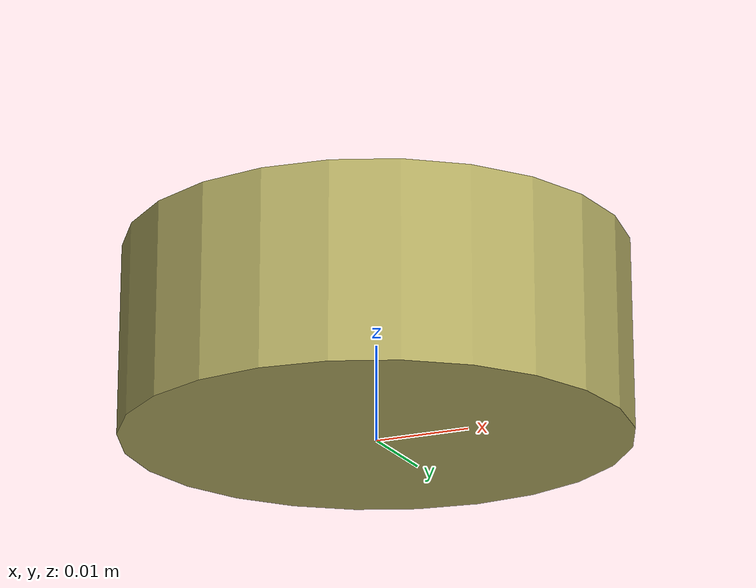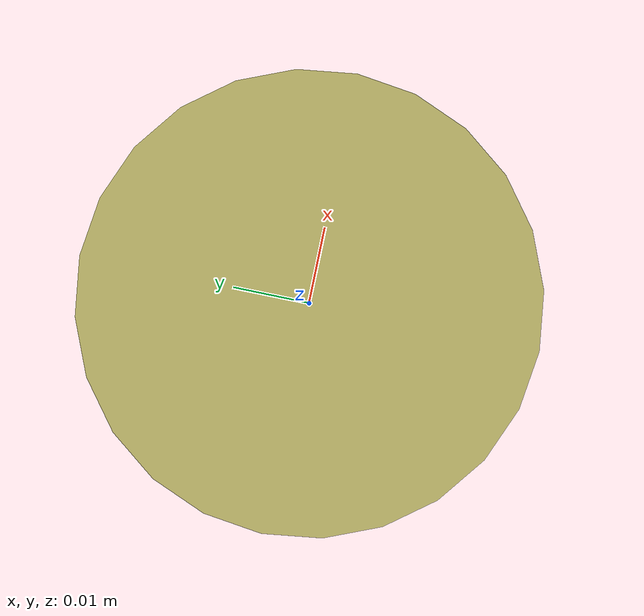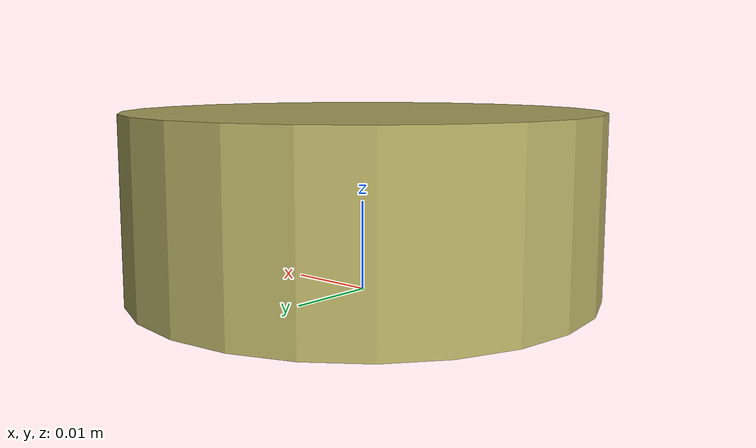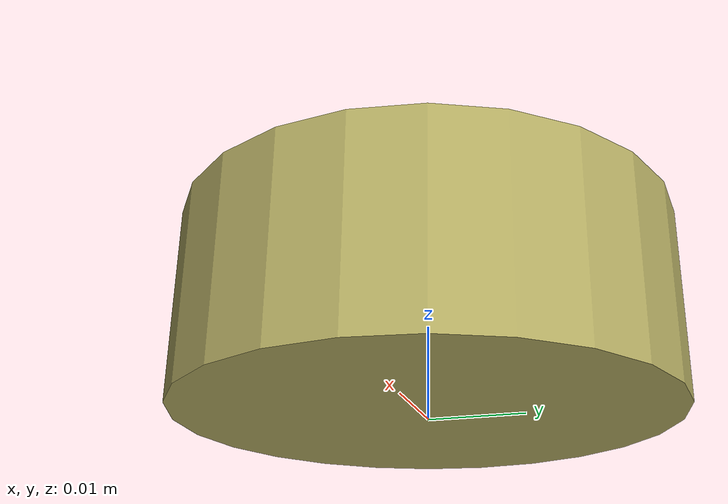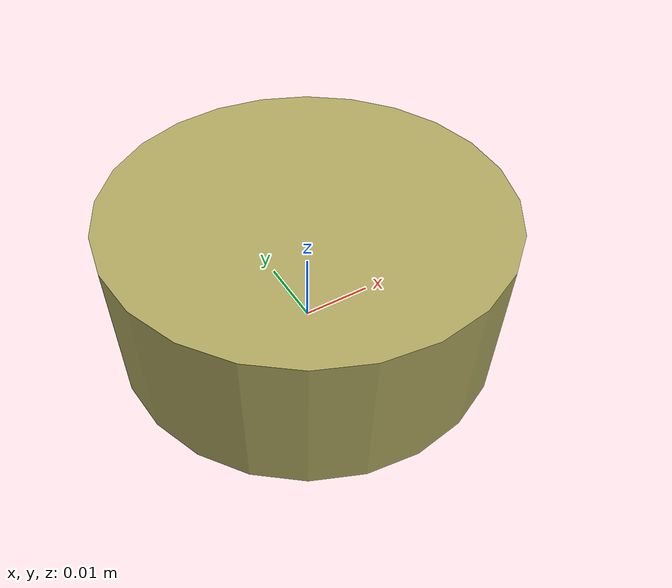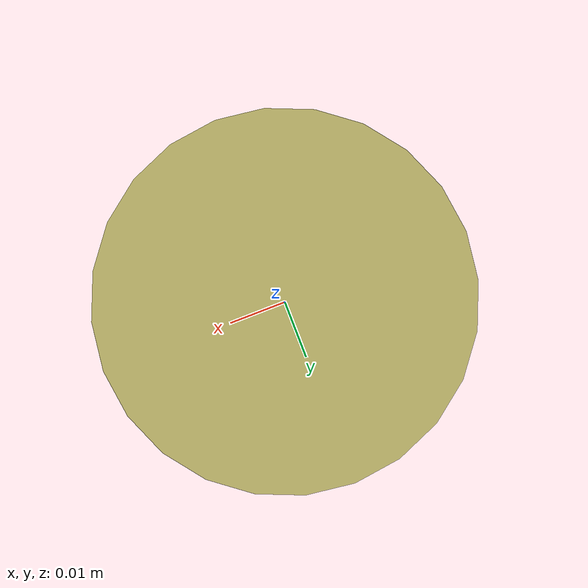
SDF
<sdf version="1.7">
  <model name="disc_26">
    <link name="base_link">
      <inertial>
        <mass>0.05</mass>
        <inertia>
          <ixx>7.91e-06</ixx>
          <ixy>0</ixy>
          <ixz>0</ixz>
          <iyy>7.91e-06</iyy>
          <iyz>0</iyz>
          <izz>1.56e-05</izz>
        </inertia>
        <pose>0 0 0.0025 0 0 0</pose>
      </inertial>
      <pose>0 0 0 0 0 0</pose>
      <visual name="visual">
        <pose>0 0 0.01 0 0 0</pose>
        <geometry>
            <cylinder>
              <radius>0.026000000000000002</radius>
              <length>0.02</length>
            </cylinder>
        </geometry>
        <material>
          <diffuse>0.686135045304398 0.6577898114214153 0.376443760358267 1</diffuse>
        </material>
      </visual>
      <collision name="collision">
        <pose>0 0 0.01 0 0 0</pose>
        <geometry>
            <cylinder>
              <radius>0.026000000000000002</radius>
              <length>0.02</length>
            </cylinder>
        </geometry>
      </collision>
      <collision name="ball1">
        <pose>0.018384776310850236 0.018384776310850236 0 0 0 0</pose>
        <geometry>
          <sphere>
            <radius>1e-07</radius>
          </sphere>
        </geometry>
      </collision>
      <collision name="ball2">
        <pose>-0.018384776310850236 0.018384776310850236 0 0 0 0</pose>
        <geometry>
          <sphere>
            <radius>1e-07</radius>
          </sphere>
        </geometry>
      </collision>
      <collision name="ball3">
        <pose>0.018384776310850236 -0.018384776310850236 0 0 0 0</pose>
        <geometry>
          <sphere>
            <radius>1e-07</radius>
          </sphere>
        </geometry>
      </collision>
      <collision name="ball4">
        <pose>-0.018384776310850236 -0.018384776310850236 0 0 0 0</pose>
        <geometry>
          <sphere>
            <radius>1e-07</radius>
          </sphere>
        </geometry>
      </collision>
    </link>
  </model>
</sdf>
